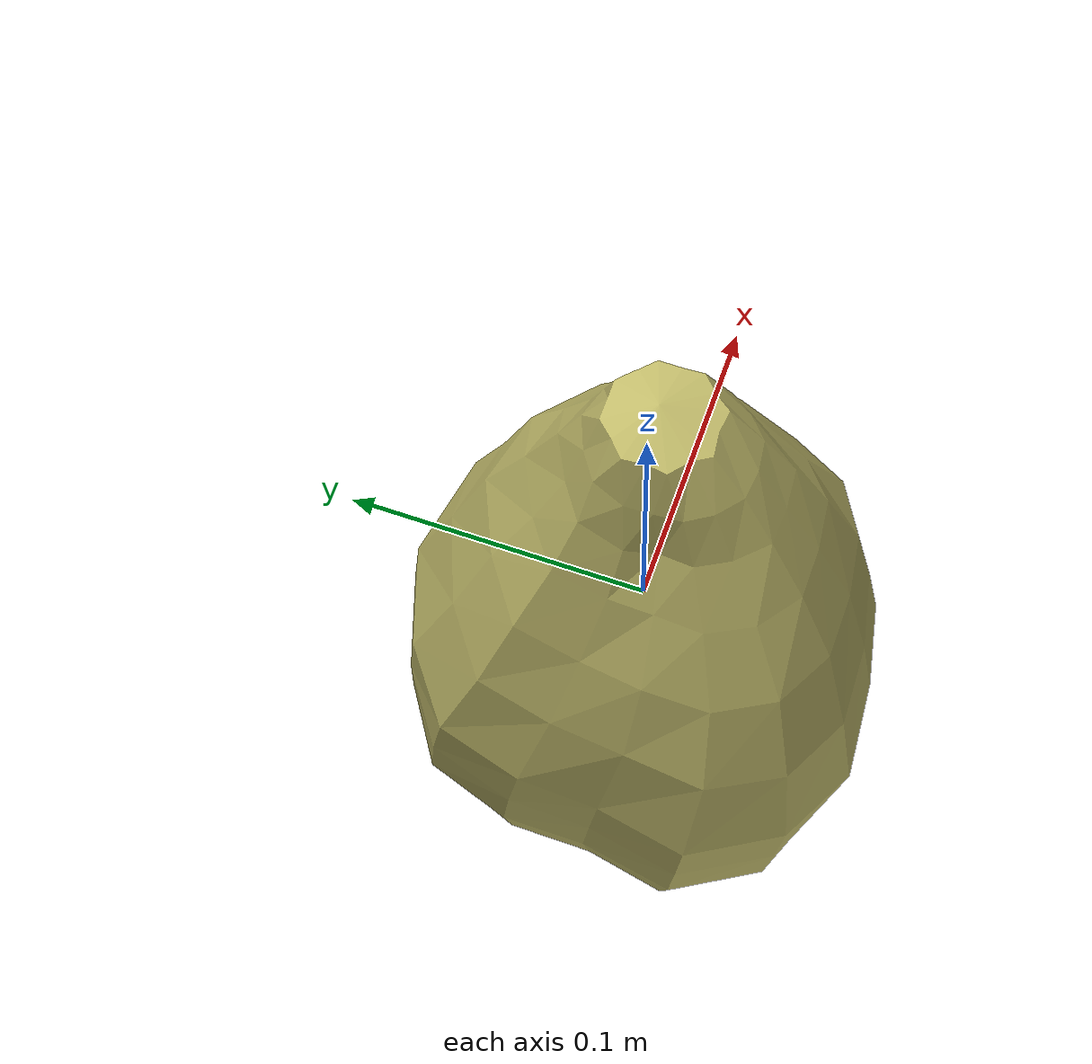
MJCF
<mujoco model="Lettuce_3">
  <compiler autolimits="true" boundmass="0.01" angle="radian"/>
  <default>
    <default class="/">
      <default class="__VISUAL_MJT__">
        <geom contype="0" conaffinity="0" group="0"/>
      </default>
      <default class="__STRUCTURAL_MJT__">
        <geom contype="8" conaffinity="15" group="4" friction="0.90000000000000002 0.90000000000000002 0.001" solref="0.025000000000000001 1" solimp="0.998 0.998 0.001"/>
      </default>
      <default class="__DYNAMIC_MJT__">
        <geom contype="1" conaffinity="15" group="4" friction="0.90000000000000002 0.90000000000000002 0.001" solref="0.025000000000000001 1" solimp="0.998 0.998 0.001"/>
      </default>
    </default>
  </default>
  <asset>
    <texture name="Lettuce1_Mat" type="2d" file="Lettuce1_AlbedoTransparency.png"/>
    <material name="material_Lettuce1_Mat" class="/" texture="Lettuce1_Mat" specular="0.5" shininess="0.5" rgba="0.9945233 1 0.60294119999999995 1"/>
    <mesh name="Lettuce_3_lettuce_a3" class="/" file="Lettuce_3_lettuce_a3/Lettuce_3_lettuce_a3.obj" scale="1 1 1"/>
  </asset>
  <worldbody>
    <body name="Lettuce_3">
      <joint name="Lettuce_3_free" class="/" type="free" pos="0 0 0" axis="0 0 1" stiffness="0" range="0 0" armature="0" damping="0.10000000000000001" frictionloss="0"/>
      <body name="Lettuce_3_lettuce_a3" pos="-0.0028999999999999998 -0.0014 0.0052199999999999998" quat="1 0 0 0">
        <geom name="Lettuce_3_lettuce_a3" class="__VISUAL_MJT__" type="mesh" material="material_Lettuce1_Mat" shellinertia="true" mesh="Lettuce_3_lettuce_a3"/>
        <geom name="Lettuce_3_PrimitiveCollider_0" class="__DYNAMIC_MJT__" type="capsule" size="0.078164666891098022 0.019112952053546906" rgba="0 1 0 1" pos="-0.002899999963119626 0.0014000837691128254 -0.031344354152679443" quat="0.99999999999891198 1.4751396607739272e-06 0 0"/>
        <geom name="Lettuce_3_PrimitiveCollider_1" class="__DYNAMIC_MJT__" type="capsule" size="0.054693114012479782 0.0089912153780460358" rgba="0 1 0 1" pos="-0.0028998851776123047 -0.004099865909665823 0.054499506950378418" quat="0.99999999999891198 1.4751396607739272e-06 0 0"/>
      </body>
    </body>
  </worldbody>
</mujoco>
